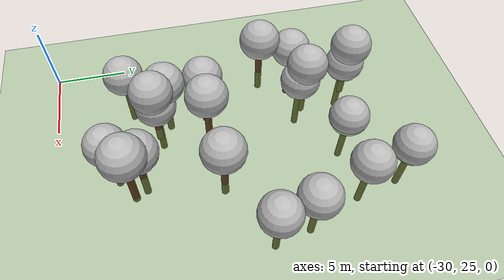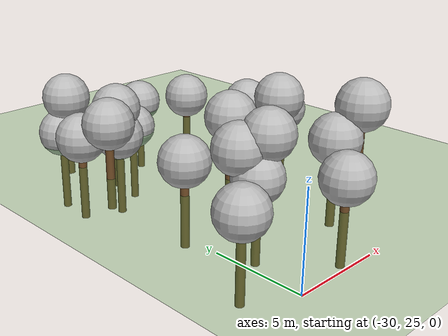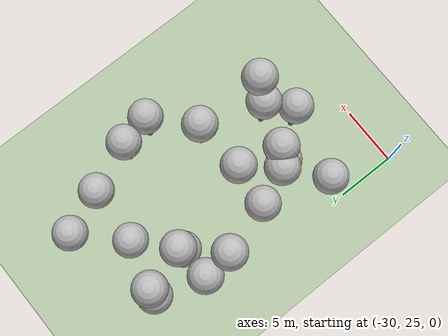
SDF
<sdf version="1.7">
 <world name="default">
  <model name="tree_simple446">
   <static>1</static>
   <link name="link">
    <pose>0 0 0.1 0 -0 0</pose>
    <collision name="collision_trunk">
     <pose>0 0 2 0 -0 0</pose>
     <geometry><cylinder><radius>0.25</radius><length>4</length></cylinder></geometry>
    </collision>
    <collision name="collision_treetop">
     <pose>0 0 5.2 0 -0 0</pose>
     <geometry><sphere><radius>1.5</radius></sphere></geometry>
    </collision>
    <visual name="trunk">
     <pose>0 0 2 0 -0 0</pose>
     <geometry><cylinder><radius>0.25</radius><length>4</length></cylinder></geometry>
     <material>
      <script>
       <uri>model://tree_simple/scripts</uri>
       <uri>model://tree_simple/materials/textures</uri>
       <name>TreeSimple/Trunk</name>
      </script>
     </material>
    </visual>
    <visual name="treetop">
     <pose>0 0 5.2 0 -0 0</pose>
     <geometry><sphere><radius>1.5</radius></sphere></geometry>
     <material>
      <script>
       <uri>model://tree_simple/scripts</uri>
       <uri>model://tree_simple/materials/textures</uri>
       <name>TreeSimple/Treetop</name>
      </script>
     </material>
    </visual>
   </link>
   <pose>-14.8874 38.8089 -3.65914 0 -0 0</pose>
  </model>
  <model name="tree_simple441">
   <static>1</static>
   <link name="link">
    <pose>0 0 0.1 0 -0 0</pose>
    <collision name="collision_trunk">
     <pose>0 0 2 0 -0 0</pose>
     <geometry><cylinder><radius>0.25</radius><length>4</length></cylinder></geometry>
    </collision>
    <collision name="collision_treetop">
     <pose>0 0 5.2 0 -0 0</pose>
     <geometry><sphere><radius>1.5</radius></sphere></geometry>
    </collision>
    <visual name="trunk">
     <pose>0 0 2 0 -0 0</pose>
     <geometry><cylinder><radius>0.25</radius><length>4</length></cylinder></geometry>
     <material>
      <script>
       <uri>model://tree_simple/scripts</uri>
       <uri>model://tree_simple/materials/textures</uri>
       <name>TreeSimple/Trunk</name>
      </script>
     </material>
    </visual>
    <visual name="treetop">
     <pose>0 0 5.2 0 -0 0</pose>
     <geometry><sphere><radius>1.5</radius></sphere></geometry>
     <material>
      <script>
       <uri>model://tree_simple/scripts</uri>
       <uri>model://tree_simple/materials/textures</uri>
       <name>TreeSimple/Treetop</name>
      </script>
     </material>
    </visual>
   </link>
   <pose>-25.4259 33.0017 -2.14202 0 -0 0</pose>
  </model>
  <model name="tree_simple409">
   <static>1</static>
   <link name="link">
    <pose>0 0 0.1 0 -0 0</pose>
    <collision name="collision_trunk">
     <pose>0 0 2 0 -0 0</pose>
     <geometry><cylinder><radius>0.25</radius><length>4</length></cylinder></geometry>
    </collision>
    <collision name="collision_treetop">
     <pose>0 0 5.2 0 -0 0</pose>
     <geometry><sphere><radius>1.5</radius></sphere></geometry>
    </collision>
    <visual name="trunk">
     <pose>0 0 2 0 -0 0</pose>
     <geometry><cylinder><radius>0.25</radius><length>4</length></cylinder></geometry>
     <material>
      <script>
       <uri>model://tree_simple/scripts</uri>
       <uri>model://tree_simple/materials/textures</uri>
       <name>TreeSimple/Trunk</name>
      </script>
     </material>
    </visual>
    <visual name="treetop">
     <pose>0 0 5.2 0 -0 0</pose>
     <geometry><sphere><radius>1.5</radius></sphere></geometry>
     <material>
      <script>
       <uri>model://tree_simple/scripts</uri>
       <uri>model://tree_simple/materials/textures</uri>
       <name>TreeSimple/Treetop</name>
      </script>
     </material>
    </visual>
   </link>
   <pose>-23.2045 35.7189 -1.54857 0 -0 0</pose>
  </model>
  <model name="tree_simple359">
   <static>1</static>
   <link name="link">
    <pose>0 0 0.1 0 -0 0</pose>
    <collision name="collision_trunk">
     <pose>0 0 2 0 -0 0</pose>
     <geometry><cylinder><radius>0.25</radius><length>4</length></cylinder></geometry>
    </collision>
    <collision name="collision_treetop">
     <pose>0 0 5.2 0 -0 0</pose>
     <geometry><sphere><radius>1.5</radius></sphere></geometry>
    </collision>
    <visual name="trunk">
     <pose>0 0 2 0 -0 0</pose>
     <geometry><cylinder><radius>0.25</radius><length>4</length></cylinder></geometry>
     <material>
      <script>
       <uri>model://tree_simple/scripts</uri>
       <uri>model://tree_simple/materials/textures</uri>
       <name>TreeSimple/Trunk</name>
      </script>
     </material>
    </visual>
    <visual name="treetop">
     <pose>0 0 5.2 0 -0 0</pose>
     <geometry><sphere><radius>1.5</radius></sphere></geometry>
     <material>
      <script>
       <uri>model://tree_simple/scripts</uri>
       <uri>model://tree_simple/materials/textures</uri>
       <name>TreeSimple/Treetop</name>
      </script>
     </material>
    </visual>
   </link>
   <pose>-20.2372 30.6627 -2.32529 0 -0 0</pose>
  </model>
  <model name="tree_simple358">
   <static>1</static>
   <link name="link">
    <pose>0 0 0.1 0 -0 0</pose>
    <collision name="collision_trunk">
     <pose>0 0 2 0 -0 0</pose>
     <geometry><cylinder><radius>0.25</radius><length>4</length></cylinder></geometry>
    </collision>
    <collision name="collision_treetop">
     <pose>0 0 5.2 0 -0 0</pose>
     <geometry><sphere><radius>1.5</radius></sphere></geometry>
    </collision>
    <visual name="trunk">
     <pose>0 0 2 0 -0 0</pose>
     <geometry><cylinder><radius>0.25</radius><length>4</length></cylinder></geometry>
     <material>
      <script>
       <uri>model://tree_simple/scripts</uri>
       <uri>model://tree_simple/materials/textures</uri>
       <name>TreeSimple/Trunk</name>
      </script>
     </material>
    </visual>
    <visual name="treetop">
     <pose>0 0 5.2 0 -0 0</pose>
     <geometry><sphere><radius>1.5</radius></sphere></geometry>
     <material>
      <script>
       <uri>model://tree_simple/scripts</uri>
       <uri>model://tree_simple/materials/textures</uri>
       <name>TreeSimple/Treetop</name>
      </script>
     </material>
    </visual>
   </link>
   <pose>-28.1059 40.5295 -2.02491 0 -0 0</pose>
  </model>
  <model name="tree_simple343">
   <static>1</static>
   <link name="link">
    <pose>0 0 0.1 0 -0 0</pose>
    <collision name="collision_trunk">
     <pose>0 0 2 0 -0 0</pose>
     <geometry><cylinder><radius>0.25</radius><length>4</length></cylinder></geometry>
    </collision>
    <collision name="collision_treetop">
     <pose>0 0 5.2 0 -0 0</pose>
     <geometry><sphere><radius>1.5</radius></sphere></geometry>
    </collision>
    <visual name="trunk">
     <pose>0 0 2 0 -0 0</pose>
     <geometry><cylinder><radius>0.25</radius><length>4</length></cylinder></geometry>
     <material>
      <script>
       <uri>model://tree_simple/scripts</uri>
       <uri>model://tree_simple/materials/textures</uri>
       <name>TreeSimple/Trunk</name>
      </script>
     </material>
    </visual>
    <visual name="treetop">
     <pose>0 0 5.2 0 -0 0</pose>
     <geometry><sphere><radius>1.5</radius></sphere></geometry>
     <material>
      <script>
       <uri>model://tree_simple/scripts</uri>
       <uri>model://tree_simple/materials/textures</uri>
       <name>TreeSimple/Treetop</name>
      </script>
     </material>
    </visual>
   </link>
   <pose>-17.2959 45.7138 -3.76823 0 -0 0</pose>
  </model>
  <model name="tree_simple342">
   <static>1</static>
   <link name="link">
    <pose>0 0 0.1 0 -0 0</pose>
    <collision name="collision_trunk">
     <pose>0 0 2 0 -0 0</pose>
     <geometry><cylinder><radius>0.25</radius><length>4</length></cylinder></geometry>
    </collision>
    <collision name="collision_treetop">
     <pose>0 0 5.2 0 -0 0</pose>
     <geometry><sphere><radius>1.5</radius></sphere></geometry>
    </collision>
    <visual name="trunk">
     <pose>0 0 2 0 -0 0</pose>
     <geometry><cylinder><radius>0.25</radius><length>4</length></cylinder></geometry>
     <material>
      <script>
       <uri>model://tree_simple/scripts</uri>
       <uri>model://tree_simple/materials/textures</uri>
       <name>TreeSimple/Trunk</name>
      </script>
     </material>
    </visual>
    <visual name="treetop">
     <pose>0 0 5.2 0 -0 0</pose>
     <geometry><sphere><radius>1.5</radius></sphere></geometry>
     <material>
      <script>
       <uri>model://tree_simple/scripts</uri>
       <uri>model://tree_simple/materials/textures</uri>
       <name>TreeSimple/Treetop</name>
      </script>
     </material>
    </visual>
   </link>
   <pose>-22.037 46.0034 -5.01437 0 -0 0</pose>
  </model>
  <model name="tree_simple310">
   <static>1</static>
   <link name="link">
    <pose>0 0 0.1 0 -0 0</pose>
    <collision name="collision_trunk">
     <pose>0 0 2 0 -0 0</pose>
     <geometry><cylinder><radius>0.25</radius><length>4</length></cylinder></geometry>
    </collision>
    <collision name="collision_treetop">
     <pose>0 0 5.2 0 -0 0</pose>
     <geometry><sphere><radius>1.5</radius></sphere></geometry>
    </collision>
    <visual name="trunk">
     <pose>0 0 2 0 -0 0</pose>
     <geometry><cylinder><radius>0.25</radius><length>4</length></cylinder></geometry>
     <material>
      <script>
       <uri>model://tree_simple/scripts</uri>
       <uri>model://tree_simple/materials/textures</uri>
       <name>TreeSimple/Trunk</name>
      </script>
     </material>
    </visual>
    <visual name="treetop">
     <pose>0 0 5.2 0 -0 0</pose>
     <geometry><sphere><radius>1.5</radius></sphere></geometry>
     <material>
      <script>
       <uri>model://tree_simple/scripts</uri>
       <uri>model://tree_simple/materials/textures</uri>
       <name>TreeSimple/Treetop</name>
      </script>
     </material>
    </visual>
   </link>
   <pose>-24.125 32.106 -1.42545 0 -0 0</pose>
  </model>
  <model name="tree_simple307">
   <static>1</static>
   <link name="link">
    <pose>0 0 0.1 0 -0 0</pose>
    <collision name="collision_trunk">
     <pose>0 0 2 0 -0 0</pose>
     <geometry><cylinder><radius>0.25</radius><length>4</length></cylinder></geometry>
    </collision>
    <collision name="collision_treetop">
     <pose>0 0 5.2 0 -0 0</pose>
     <geometry><sphere><radius>1.5</radius></sphere></geometry>
    </collision>
    <visual name="trunk">
     <pose>0 0 2 0 -0 0</pose>
     <geometry><cylinder><radius>0.25</radius><length>4</length></cylinder></geometry>
     <material>
      <script>
       <uri>model://tree_simple/scripts</uri>
       <uri>model://tree_simple/materials/textures</uri>
       <name>TreeSimple/Trunk</name>
      </script>
     </material>
    </visual>
    <visual name="treetop">
     <pose>0 0 5.2 0 -0 0</pose>
     <geometry><sphere><radius>1.5</radius></sphere></geometry>
     <material>
      <script>
       <uri>model://tree_simple/scripts</uri>
       <uri>model://tree_simple/materials/textures</uri>
       <name>TreeSimple/Treetop</name>
      </script>
     </material>
    </visual>
   </link>
   <pose>-25.3993 43.1283 -4.07917 0 -0 0</pose>
  </model>
  <model name="tree_simple271">
   <static>1</static>
   <link name="link">
    <pose>0 0 0.1 0 -0 0</pose>
    <collision name="collision_trunk">
     <pose>0 0 2 0 -0 0</pose>
     <geometry><cylinder><radius>0.25</radius><length>4</length></cylinder></geometry>
    </collision>
    <collision name="collision_treetop">
     <pose>0 0 5.2 0 -0 0</pose>
     <geometry><sphere><radius>1.5</radius></sphere></geometry>
    </collision>
    <visual name="trunk">
     <pose>0 0 2 0 -0 0</pose>
     <geometry><cylinder><radius>0.25</radius><length>4</length></cylinder></geometry>
     <material>
      <script>
       <uri>model://tree_simple/scripts</uri>
       <uri>model://tree_simple/materials/textures</uri>
       <name>TreeSimple/Trunk</name>
      </script>
     </material>
    </visual>
    <visual name="treetop">
     <pose>0 0 5.2 0 -0 0</pose>
     <geometry><sphere><radius>1.5</radius></sphere></geometry>
     <material>
      <script>
       <uri>model://tree_simple/scripts</uri>
       <uri>model://tree_simple/materials/textures</uri>
       <name>TreeSimple/Treetop</name>
      </script>
     </material>
    </visual>
   </link>
   <pose>-18.5427 49.4999 -4.75514 0 -0 0</pose>
  </model>
  <model name="tree_simple264">
   <static>1</static>
   <link name="link">
    <pose>0 0 0.1 0 -0 0</pose>
    <collision name="collision_trunk">
     <pose>0 0 2 0 -0 0</pose>
     <geometry><cylinder><radius>0.25</radius><length>4</length></cylinder></geometry>
    </collision>
    <collision name="collision_treetop">
     <pose>0 0 5.2 0 -0 0</pose>
     <geometry><sphere><radius>1.5</radius></sphere></geometry>
    </collision>
    <visual name="trunk">
     <pose>0 0 2 0 -0 0</pose>
     <geometry><cylinder><radius>0.25</radius><length>4</length></cylinder></geometry>
     <material>
      <script>
       <uri>model://tree_simple/scripts</uri>
       <uri>model://tree_simple/materials/textures</uri>
       <name>TreeSimple/Trunk</name>
      </script>
     </material>
    </visual>
    <visual name="treetop">
     <pose>0 0 5.2 0 -0 0</pose>
     <geometry><sphere><radius>1.5</radius></sphere></geometry>
     <material>
      <script>
       <uri>model://tree_simple/scripts</uri>
       <uri>model://tree_simple/materials/textures</uri>
       <name>TreeSimple/Treetop</name>
      </script>
     </material>
    </visual>
   </link>
   <pose>-26.5961 35.8751 -3.34556 0 -0 0</pose>
  </model>
  <model name="tree_simple236">
   <static>1</static>
   <link name="link">
    <pose>0 0 0.1 0 -0 0</pose>
    <collision name="collision_trunk">
     <pose>0 0 2 0 -0 0</pose>
     <geometry><cylinder><radius>0.25</radius><length>4</length></cylinder></geometry>
    </collision>
    <collision name="collision_treetop">
     <pose>0 0 5.2 0 -0 0</pose>
     <geometry><sphere><radius>1.5</radius></sphere></geometry>
    </collision>
    <visual name="trunk">
     <pose>0 0 2 0 -0 0</pose>
     <geometry><cylinder><radius>0.25</radius><length>4</length></cylinder></geometry>
     <material>
      <script>
       <uri>model://tree_simple/scripts</uri>
       <uri>model://tree_simple/materials/textures</uri>
       <name>TreeSimple/Trunk</name>
      </script>
     </material>
    </visual>
    <visual name="treetop">
     <pose>0 0 5.2 0 -0 0</pose>
     <geometry><sphere><radius>1.5</radius></sphere></geometry>
     <material>
      <script>
       <uri>model://tree_simple/scripts</uri>
       <uri>model://tree_simple/materials/textures</uri>
       <name>TreeSimple/Treetop</name>
      </script>
     </material>
    </visual>
   </link>
   <pose>-28.2557 43.0886 -3.48707 0 -0 0</pose>
  </model>
  <model name="tree_simple224">
   <static>1</static>
   <link name="link">
    <pose>0 0 0.1 0 -0 0</pose>
    <collision name="collision_trunk">
     <pose>0 0 2 0 -0 0</pose>
     <geometry><cylinder><radius>0.25</radius><length>4</length></cylinder></geometry>
    </collision>
    <collision name="collision_treetop">
     <pose>0 0 5.2 0 -0 0</pose>
     <geometry><sphere><radius>1.5</radius></sphere></geometry>
    </collision>
    <visual name="trunk">
     <pose>0 0 2 0 -0 0</pose>
     <geometry><cylinder><radius>0.25</radius><length>4</length></cylinder></geometry>
     <material>
      <script>
       <uri>model://tree_simple/scripts</uri>
       <uri>model://tree_simple/materials/textures</uri>
       <name>TreeSimple/Trunk</name>
      </script>
     </material>
    </visual>
    <visual name="treetop">
     <pose>0 0 5.2 0 -0 0</pose>
     <geometry><sphere><radius>1.5</radius></sphere></geometry>
     <material>
      <script>
       <uri>model://tree_simple/scripts</uri>
       <uri>model://tree_simple/materials/textures</uri>
       <name>TreeSimple/Treetop</name>
      </script>
     </material>
    </visual>
   </link>
   <pose>-25.3037 43.465 -2.38062 0 -0 0</pose>
  </model>
  <model name="tree_simple205">
   <static>1</static>
   <link name="link">
    <pose>0 0 0.1 0 -0 0</pose>
    <collision name="collision_trunk">
     <pose>0 0 2 0 -0 0</pose>
     <geometry><cylinder><radius>0.25</radius><length>4</length></cylinder></geometry>
    </collision>
    <collision name="collision_treetop">
     <pose>0 0 5.2 0 -0 0</pose>
     <geometry><sphere><radius>1.5</radius></sphere></geometry>
    </collision>
    <visual name="trunk">
     <pose>0 0 2 0 -0 0</pose>
     <geometry><cylinder><radius>0.25</radius><length>4</length></cylinder></geometry>
     <material>
      <script>
       <uri>model://tree_simple/scripts</uri>
       <uri>model://tree_simple/materials/textures</uri>
       <name>TreeSimple/Trunk</name>
      </script>
     </material>
    </visual>
    <visual name="treetop">
     <pose>0 0 5.2 0 -0 0</pose>
     <geometry><sphere><radius>1.5</radius></sphere></geometry>
     <material>
      <script>
       <uri>model://tree_simple/scripts</uri>
       <uri>model://tree_simple/materials/textures</uri>
       <name>TreeSimple/Treetop</name>
      </script>
     </material>
    </visual>
   </link>
   <pose>-28.2612 30.088 -3.77668 0 -0 0</pose>
  </model>
  <model name="tree_simple183">
   <static>1</static>
   <link name="link">
    <pose>0 0 0.1 0 -0 0</pose>
    <collision name="collision_trunk">
     <pose>0 0 2 0 -0 0</pose>
     <geometry><cylinder><radius>0.25</radius><length>4</length></cylinder></geometry>
    </collision>
    <collision name="collision_treetop">
     <pose>0 0 5.2 0 -0 0</pose>
     <geometry><sphere><radius>1.5</radius></sphere></geometry>
    </collision>
    <visual name="trunk">
     <pose>0 0 2 0 -0 0</pose>
     <geometry><cylinder><radius>0.25</radius><length>4</length></cylinder></geometry>
     <material>
      <script>
       <uri>model://tree_simple/scripts</uri>
       <uri>model://tree_simple/materials/textures</uri>
       <name>TreeSimple/Trunk</name>
      </script>
     </material>
    </visual>
    <visual name="treetop">
     <pose>0 0 5.2 0 -0 0</pose>
     <geometry><sphere><radius>1.5</radius></sphere></geometry>
     <material>
      <script>
       <uri>model://tree_simple/scripts</uri>
       <uri>model://tree_simple/materials/textures</uri>
       <name>TreeSimple/Treetop</name>
      </script>
     </material>
    </visual>
   </link>
   <pose>-24.8052 32.1734 -3.69347 0 -0 0</pose>
  </model>
  <model name="tree_simple134">
   <static>1</static>
   <link name="link">
    <pose>0 0 0.1 0 -0 0</pose>
    <collision name="collision_trunk">
     <pose>0 0 2 0 -0 0</pose>
     <geometry><cylinder><radius>0.25</radius><length>4</length></cylinder></geometry>
    </collision>
    <collision name="collision_treetop">
     <pose>0 0 5.2 0 -0 0</pose>
     <geometry><sphere><radius>1.5</radius></sphere></geometry>
    </collision>
    <visual name="trunk">
     <pose>0 0 2 0 -0 0</pose>
     <geometry><cylinder><radius>0.25</radius><length>4</length></cylinder></geometry>
     <material>
      <script>
       <uri>model://tree_simple/scripts</uri>
       <uri>model://tree_simple/materials/textures</uri>
       <name>TreeSimple/Trunk</name>
      </script>
     </material>
    </visual>
    <visual name="treetop">
     <pose>0 0 5.2 0 -0 0</pose>
     <geometry><sphere><radius>1.5</radius></sphere></geometry>
     <material>
      <script>
       <uri>model://tree_simple/scripts</uri>
       <uri>model://tree_simple/materials/textures</uri>
       <name>TreeSimple/Treetop</name>
      </script>
     </material>
    </visual>
   </link>
   <pose>-15.5112 41.5254 -3.59653 0 -0 0</pose>
  </model>
  <model name="tree_simple132">
   <static>1</static>
   <link name="link">
    <pose>0 0 0.1 0 -0 0</pose>
    <collision name="collision_trunk">
     <pose>0 0 2 0 -0 0</pose>
     <geometry><cylinder><radius>0.25</radius><length>4</length></cylinder></geometry>
    </collision>
    <collision name="collision_treetop">
     <pose>0 0 5.2 0 -0 0</pose>
     <geometry><sphere><radius>1.5</radius></sphere></geometry>
    </collision>
    <visual name="trunk">
     <pose>0 0 2 0 -0 0</pose>
     <geometry><cylinder><radius>0.25</radius><length>4</length></cylinder></geometry>
     <material>
      <script>
       <uri>model://tree_simple/scripts</uri>
       <uri>model://tree_simple/materials/textures</uri>
       <name>TreeSimple/Trunk</name>
      </script>
     </material>
    </visual>
    <visual name="treetop">
     <pose>0 0 5.2 0 -0 0</pose>
     <geometry><sphere><radius>1.5</radius></sphere></geometry>
     <material>
      <script>
       <uri>model://tree_simple/scripts</uri>
       <uri>model://tree_simple/materials/textures</uri>
       <name>TreeSimple/Treetop</name>
      </script>
     </material>
    </visual>
   </link>
   <pose>-26.8566 47.2141 -4.58073 0 -0 0</pose>
  </model>
  <model name="tree_simple116">
   <static>1</static>
   <link name="link">
    <pose>0 0 0.1 0 -0 0</pose>
    <collision name="collision_trunk">
     <pose>0 0 2 0 -0 0</pose>
     <geometry><cylinder><radius>0.25</radius><length>4</length></cylinder></geometry>
    </collision>
    <collision name="collision_treetop">
     <pose>0 0 5.2 0 -0 0</pose>
     <geometry><sphere><radius>1.5</radius></sphere></geometry>
    </collision>
    <visual name="trunk">
     <pose>0 0 2 0 -0 0</pose>
     <geometry><cylinder><radius>0.25</radius><length>4</length></cylinder></geometry>
     <material>
      <script>
       <uri>model://tree_simple/scripts</uri>
       <uri>model://tree_simple/materials/textures</uri>
       <name>TreeSimple/Trunk</name>
      </script>
     </material>
    </visual>
    <visual name="treetop">
     <pose>0 0 5.2 0 -0 0</pose>
     <geometry><sphere><radius>1.5</radius></sphere></geometry>
     <material>
      <script>
       <uri>model://tree_simple/scripts</uri>
       <uri>model://tree_simple/materials/textures</uri>
       <name>TreeSimple/Treetop</name>
      </script>
     </material>
    </visual>
   </link>
   <pose>-18.6791 36.033 -1.47538 0 -0 0</pose>
  </model>
  <model name="tree_simple111">
   <static>1</static>
   <link name="link">
    <pose>0 0 0.1 0 -0 0</pose>
    <collision name="collision_trunk">
     <pose>0 0 2 0 -0 0</pose>
     <geometry><cylinder><radius>0.25</radius><length>4</length></cylinder></geometry>
    </collision>
    <collision name="collision_treetop">
     <pose>0 0 5.2 0 -0 0</pose>
     <geometry><sphere><radius>1.5</radius></sphere></geometry>
    </collision>
    <visual name="trunk">
     <pose>0 0 2 0 -0 0</pose>
     <geometry><cylinder><radius>0.25</radius><length>4</length></cylinder></geometry>
     <material>
      <script>
       <uri>model://tree_simple/scripts</uri>
       <uri>model://tree_simple/materials/textures</uri>
       <name>TreeSimple/Trunk</name>
      </script>
     </material>
    </visual>
    <visual name="treetop">
     <pose>0 0 5.2 0 -0 0</pose>
     <geometry><sphere><radius>1.5</radius></sphere></geometry>
     <material>
      <script>
       <uri>model://tree_simple/scripts</uri>
       <uri>model://tree_simple/materials/textures</uri>
       <name>TreeSimple/Treetop</name>
      </script>
     </material>
    </visual>
   </link>
   <pose>-26.4354 47.1515 -2.26791 0 -0 0</pose>
  </model>
  <model name="tree_simple104">
   <static>1</static>
   <link name="link">
    <pose>0 0 0.1 0 -0 0</pose>
    <collision name="collision_trunk">
     <pose>0 0 2 0 -0 0</pose>
     <geometry><cylinder><radius>0.25</radius><length>4</length></cylinder></geometry>
    </collision>
    <collision name="collision_treetop">
     <pose>0 0 5.2 0 -0 0</pose>
     <geometry><sphere><radius>1.5</radius></sphere></geometry>
    </collision>
    <visual name="trunk">
     <pose>0 0 2 0 -0 0</pose>
     <geometry><cylinder><radius>0.25</radius><length>4</length></cylinder></geometry>
     <material>
      <script>
       <uri>model://tree_simple/scripts</uri>
       <uri>model://tree_simple/materials/textures</uri>
       <name>TreeSimple/Trunk</name>
      </script>
     </material>
    </visual>
    <visual name="treetop">
     <pose>0 0 5.2 0 -0 0</pose>
     <geometry><sphere><radius>1.5</radius></sphere></geometry>
     <material>
      <script>
       <uri>model://tree_simple/scripts</uri>
       <uri>model://tree_simple/materials/textures</uri>
       <name>TreeSimple/Treetop</name>
      </script>
     </material>
    </visual>
   </link>
   <pose>-21.9671 28.5771 -3.46185 0 -0 0</pose>
  </model>
  <model name="tree_simple55">
   <static>1</static>
   <link name="link">
    <pose>0 0 0.1 0 -0 0</pose>
    <collision name="collision_trunk">
     <pose>0 0 2 0 -0 0</pose>
     <geometry><cylinder><radius>0.25</radius><length>4</length></cylinder></geometry>
    </collision>
    <collision name="collision_treetop">
     <pose>0 0 5.2 0 -0 0</pose>
     <geometry><sphere><radius>1.5</radius></sphere></geometry>
    </collision>
    <visual name="trunk">
     <pose>0 0 2 0 -0 0</pose>
     <geometry><cylinder><radius>0.25</radius><length>4</length></cylinder></geometry>
     <material>
      <script>
       <uri>model://tree_simple/scripts</uri>
       <uri>model://tree_simple/materials/textures</uri>
       <name>TreeSimple/Trunk</name>
      </script>
     </material>
    </visual>
    <visual name="treetop">
     <pose>0 0 5.2 0 -0 0</pose>
     <geometry><sphere><radius>1.5</radius></sphere></geometry>
     <material>
      <script>
       <uri>model://tree_simple/scripts</uri>
       <uri>model://tree_simple/materials/textures</uri>
       <name>TreeSimple/Treetop</name>
      </script>
     </material>
    </visual>
   </link>
   <pose>-18.8416 30.0616 -0.559136 0 -0 0</pose>
  </model>
  <model name="ground_plane">
   <static>1</static>
   <link name="link">
    <collision name="collision">
     <geometry><plane><normal>0 0 1</normal><size>250 250</size></plane></geometry>
     <surface><friction><ode><mu>1</mu><mu2>1</mu2></ode></friction></surface>
    </collision>
    <visual name="grass">
     <cast_shadows>0</cast_shadows>
     <geometry><plane><normal>0 0 1</normal><size>150 250</size></plane></geometry>
     <material>
      <script><uri>file://media/materials/scripts/Gazebo.material</uri><name>Gazebo/Grass</name></script>
     </material>
    </visual>
   </link>
  </model>
 </world>
</sdf>
